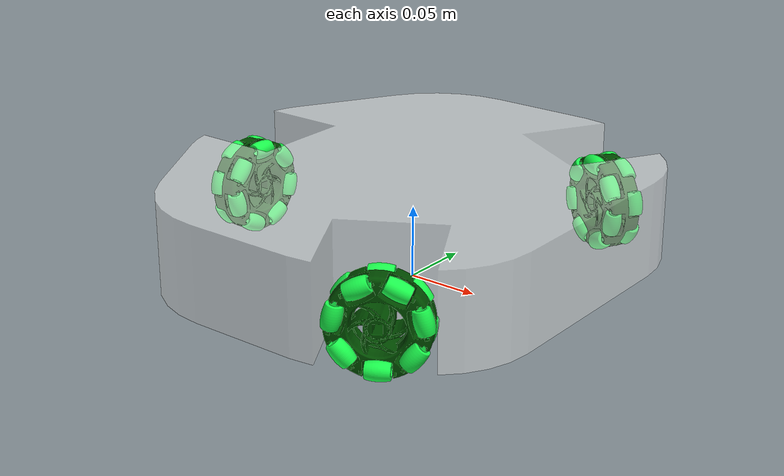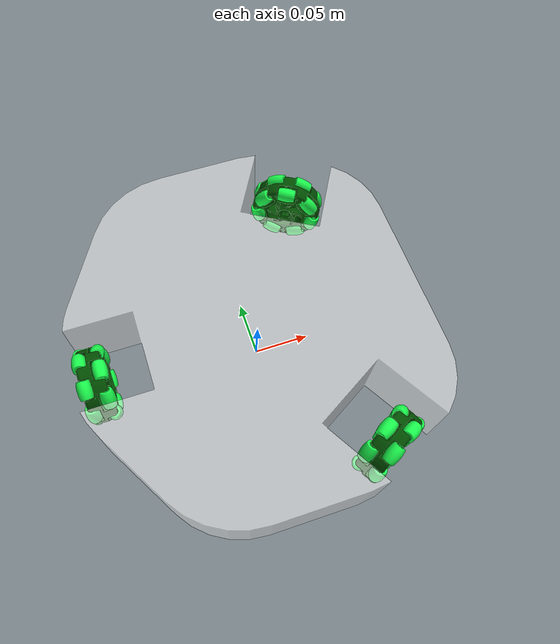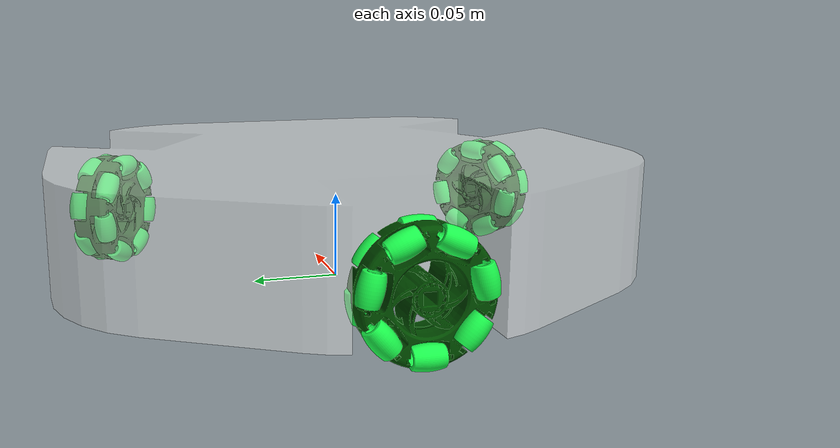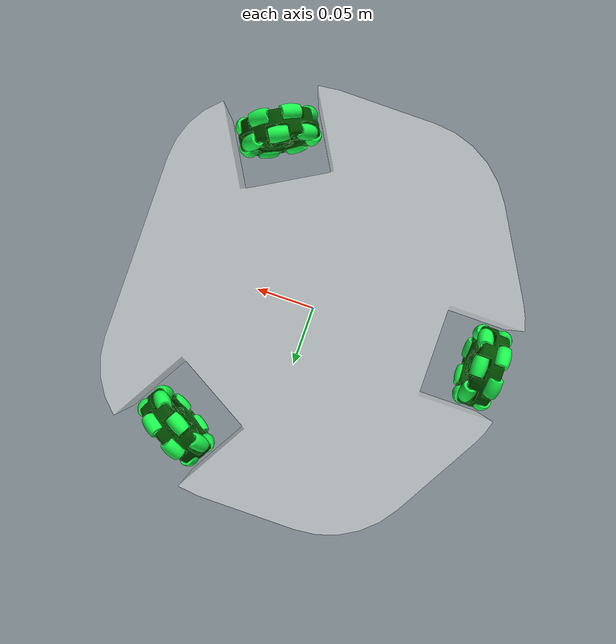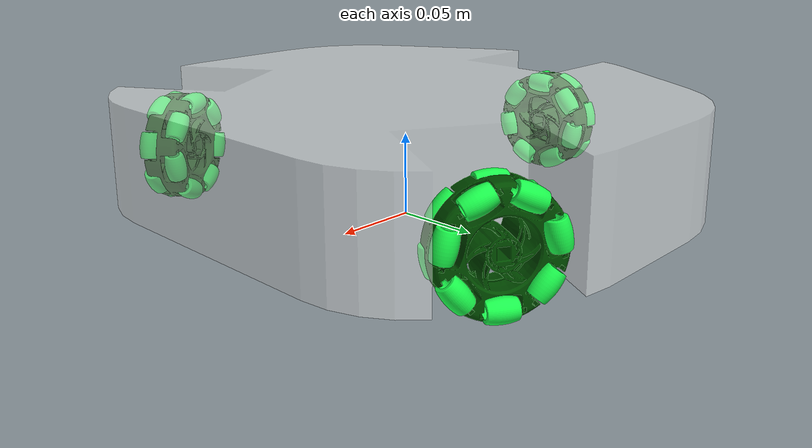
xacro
<?xml version="1.0"?>
<robot xmlns:xacro="http://ros.org/wiki/xacro" name="robotont">
    <xacro:arg name="prefix" default=""/>
    <xacro:property name= "prefix" value="$(arg prefix)"/>
    <xacro:include filename="$(find robotont_description)/urdf/rim.urdf.xacro"/>
    <xacro:property name="wheel_distance" value="0.146"/>
    <xacro:property name="wheel_center_height" value="0.021"/>

    <link name="${prefix}base_footprint"/>

    <link name="${prefix}base_link">
        <visual>
            <geometry>
                <mesh scale="0.001 0.001 0.001" filename="package://robotont_description/meshes/body.stl"/>
            </geometry>
            <material name="base_material">
                <color rgba="1 1 1 0.5"/>
            </material>
            <origin rpy="0 0 ${pi/2}"  xyz="0 0 0"/>
        </visual>
        <collision>
            <geometry>
                <mesh scale="0.001 0.001 0.001" filename="package://robotont_description/meshes/simplebody.stl"/>
            </geometry>
            <origin rpy="${pi/2} 0 ${pi/2}"  xyz="0 0 0"/>
        </collision>
        <inertial>
            <mass value="3"/>
            <inertia
			    ixx="0.02462503"
			    ixy="0"
			    ixz="0"
			    iyy="0.02082228"
			    iyz="0"
			    izz="0.04324237"
		    />
        </inertial>
    </link>

    <joint name="${prefix}base_joint" type="fixed">
        <parent link="${prefix}base_footprint"/>
        <child link="${prefix}base_link"/>
        <origin xyz="0 0 0.013" rpy="0 0 0"/>
    </joint>

    <!-- Wheels -->
    <xacro:rim_macro
		name="back"
		color="0 0.3 0"
		angle="${3*pi/2}"
		wheel_distance = "${wheel_distance}"
		wheel_center_height = "${wheel_center_height}"
        prefix="${prefix}"
	/>
    <xacro:rim_macro
		name="right"
		color="0 0.3 0"
		angle="${-1/3*pi + pi/2}"
		wheel_distance = "${wheel_distance}"
		wheel_center_height = "${wheel_center_height}"
        prefix="${prefix}"

	/>
    <xacro:rim_macro
		name="left"
		color="0 0.3 0"
		angle="${1/3*pi + pi/2}"
		wheel_distance = "${wheel_distance}"
		wheel_center_height = "${wheel_center_height}"
        prefix="${prefix}"

	/>
 </robot>

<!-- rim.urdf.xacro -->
<robot
    xmlns:xacro="http://ros.org/wiki/xacro">
    <xacro:include filename="$(find robotont_description)/urdf/roller.urdf.xacro"/>
    <!-- Roller positioning -->
    <xacro:property name="roller_radial_dist" value="0.0275" />
    <xacro:property name="roller_z_distance" value="0.008" />
    <xacro:property name="roller_init_angle" value="0" />
    <xacro:macro name="rim_macro" params="name color angle wheel_distance wheel_center_height prefix">
        <link name="${prefix}rim_${name}_link">
            <visual>
                <geometry>
                    <mesh filename="package://robotont_description/meshes/rim.stl"/>
                </geometry>
                <material name="rim_${name}_material">
                    <color rgba="${color} 1"/>
                </material>
            </visual>
            <collision>
                <geometry>
                    <cylinder radius="0.035" length="0.03"/>
                </geometry>
            </collision>
            <inertial>
                <origin xyz="0 0 0"/>
                <mass value="0.00835758"/>
                <inertia
                    ixx="6.63684e-07"
                    ixy="0"
                    ixz="0"
                    iyy="6.63684e-07"
                    iyz="0"
                    izz="9.40333e-07"
                />
            </inertial>
        </link>

        <joint name="${prefix}rim_${name}_joint" type="continuous">
            <parent link="${prefix}base_link" />
            <child link="${prefix}rim_${name}_link" />
            <axis xyz="0 0 1"/>
            <origin
                xyz="${wheel_distance*sin(angle)} ${-wheel_distance*cos(angle)} ${wheel_center_height}"
                rpy="${pi/2} 0 ${angle+pi}"
            />
        </joint>

        <!-- Front rollers -->
        <xacro:roller_macro
            parent="${name}"
            radial_dist="${roller_radial_dist}"
            z_distance="${roller_z_distance}"
            z_distance_reflect="-1"
            init_angle="${roller_init_angle}"
            no_of_roller="0"
            prefix="${prefix}"
        />
        <xacro:roller_macro
            parent="${name}"
            radial_dist="${roller_radial_dist}"
            z_distance="${roller_z_distance}"
            z_distance_reflect="-1"
            init_angle="${roller_init_angle}"
            no_of_roller="1"
            prefix="${prefix}"
        />
        <xacro:roller_macro
            parent="${name}"
            radial_dist="${roller_radial_dist}"
            z_distance="${roller_z_distance}"
            z_distance_reflect="-1"
            init_angle="${roller_init_angle}"
            no_of_roller="2"
            prefix="${prefix}"
        />
        <xacro:roller_macro
            parent="${name}"
            radial_dist="${roller_radial_dist}"
            z_distance="${roller_z_distance}"
            z_distance_reflect="-1"
            init_angle="${roller_init_angle}"
            no_of_roller="3"
            prefix="${prefix}"
        />
        <xacro:roller_macro
            parent="${name}"
            radial_dist="${roller_radial_dist}"
            z_distance="${roller_z_distance}"
            z_distance_reflect="-1"
            init_angle="${roller_init_angle}"
            no_of_roller="4"
            prefix="${prefix}"
        />
        <xacro:roller_macro
            parent="${name}"
            radial_dist="${roller_radial_dist}"
            z_distance="${roller_z_distance}"
            z_distance_reflect="-1"
            init_angle="${roller_init_angle}"
            no_of_roller="5"
            prefix="${prefix}"
        />
        <xacro:roller_macro
            parent="${name}"
            radial_dist="${roller_radial_dist}"
            z_distance="${roller_z_distance}"
            z_distance_reflect="-1"
            init_angle="${roller_init_angle}"
            no_of_roller="6"
            prefix="${prefix}"
        />
        <!-- Back rollers -->
        <xacro:roller_macro
            parent="${name}"
            radial_dist="${roller_radial_dist}"
            z_distance="${roller_z_distance}"
            z_distance_reflect="1"
            init_angle="${roller_init_angle}"
            no_of_roller="0"
            prefix="${prefix}"
        />
        <xacro:roller_macro
            parent="${name}"
            radial_dist="${roller_radial_dist}"
            z_distance="${roller_z_distance}"
            z_distance_reflect="1"
            init_angle="${roller_init_angle}"
            no_of_roller="1"
            prefix="${prefix}"
        />
        <xacro:roller_macro
            parent="${name}"
            radial_dist="${roller_radial_dist}"
            z_distance="${roller_z_distance}"
            z_distance_reflect="1"
            init_angle="${roller_init_angle}"
            no_of_roller="2"
            prefix="${prefix}"
        />
        <xacro:roller_macro
            parent="${name}"
            radial_dist="${roller_radial_dist}"
            z_distance="${roller_z_distance}"
            z_distance_reflect="1"
            init_angle="${roller_init_angle}"
            no_of_roller="3"
            prefix="${prefix}"
        />
        <xacro:roller_macro
            parent="${name}"
            radial_dist="${roller_radial_dist}"
            z_distance="${roller_z_distance}"
            z_distance_reflect="1"
            init_angle="${roller_init_angle}"
            no_of_roller="4"
            prefix="${prefix}"
        />
        <xacro:roller_macro
            parent="${name}"
            radial_dist="${roller_radial_dist}"
            z_distance="${roller_z_distance}"
            z_distance_reflect="1"
            init_angle="${roller_init_angle}"
            no_of_roller="5"
            prefix="${prefix}"
        />
        <xacro:roller_macro
            parent="${name}"
            radial_dist="${roller_radial_dist}"
            z_distance="${roller_z_distance}"
            z_distance_reflect="1"
            init_angle="${roller_init_angle}"
            no_of_roller="6"
            prefix="${prefix}"
        />
    </xacro:macro>
</robot>

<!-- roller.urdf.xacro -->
<robot
    xmlns:xacro="http://ros.org/wiki/xacro">
    <xacro:macro
		name="roller_macro"
		params="parent radial_dist z_distance z_distance_reflect init_angle no_of_roller prefix"
	>
        <xacro:if value="${z_distance_reflect==-1}">
            <xacro:property name="name" value="front_${no_of_roller}" />
            <xacro:property name="offset" value="0" />
        </xacro:if>
        <xacro:unless value="${z_distance_reflect==-1}">
            <xacro:property name="name" value="back_${no_of_roller}" />
            <xacro:property name="offset" value="${pi}" />
        </xacro:unless>
        <link name="${prefix}roller_${name}_rim_${parent}_link">
            <visual>
                <geometry>
                    <mesh scale="0.001 0.001 0.001" filename="package://robotont_description/meshes/roller.stl"/>
                </geometry>
                <material name="roller_material">
                    <color rgba="0.1 1 0.3 1"/>
                </material>
            </visual>
        </link>
        <joint
			name="${prefix}roller_${name}_rim_${parent}_joint"
			type="fixed"
		>
            <parent link="${prefix}rim_${parent}_link"/>
            <child link="${prefix}roller_${name}_rim_${parent}_link"/>
            <origin
				xyz="${radial_dist*sin(-1*z_distance_reflect*(init_angle+offset+no_of_roller*2*pi/7))} ${-radial_dist*cos(-1*z_distance_reflect*(init_angle+offset+no_of_roller*2*pi/7))} ${z_distance*z_distance_reflect}"
				rpy="0 0 ${-1*z_distance_reflect*(init_angle+no_of_roller*2*pi/7)}"
			/>
        </joint>
    </xacro:macro>
</robot>
